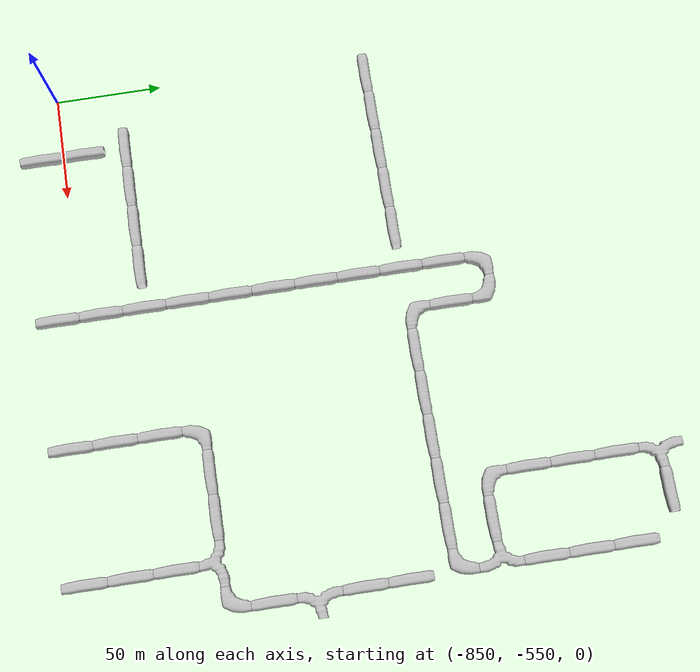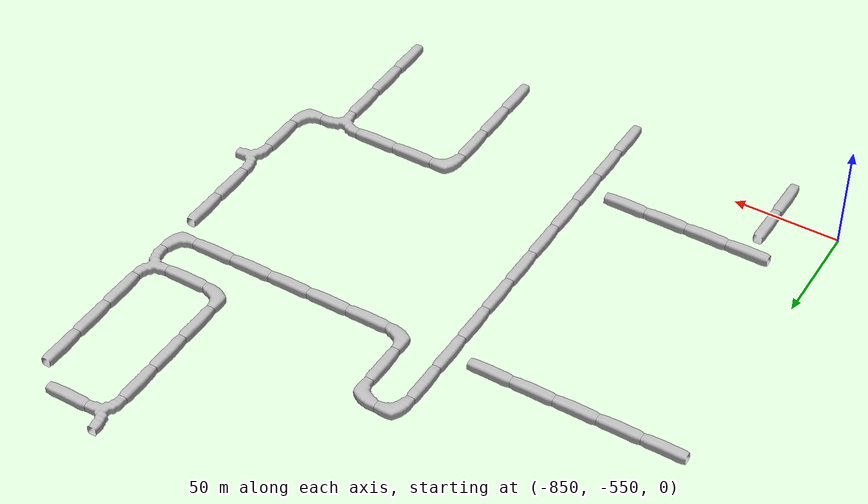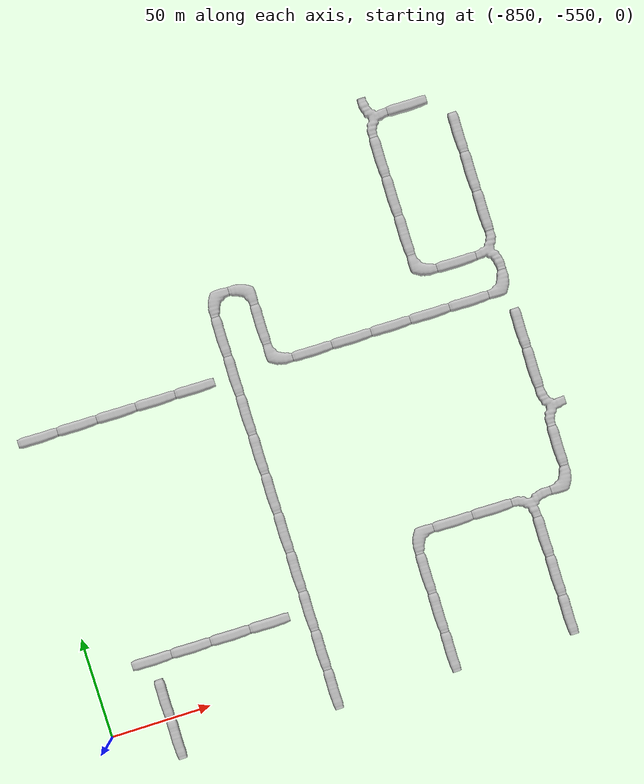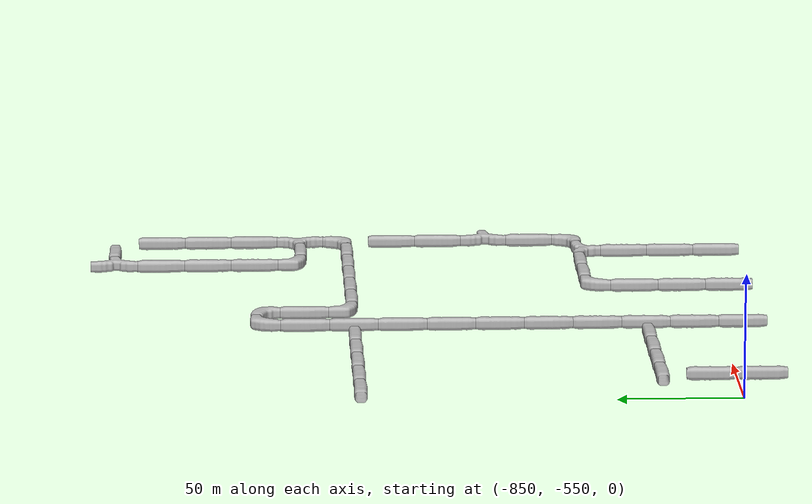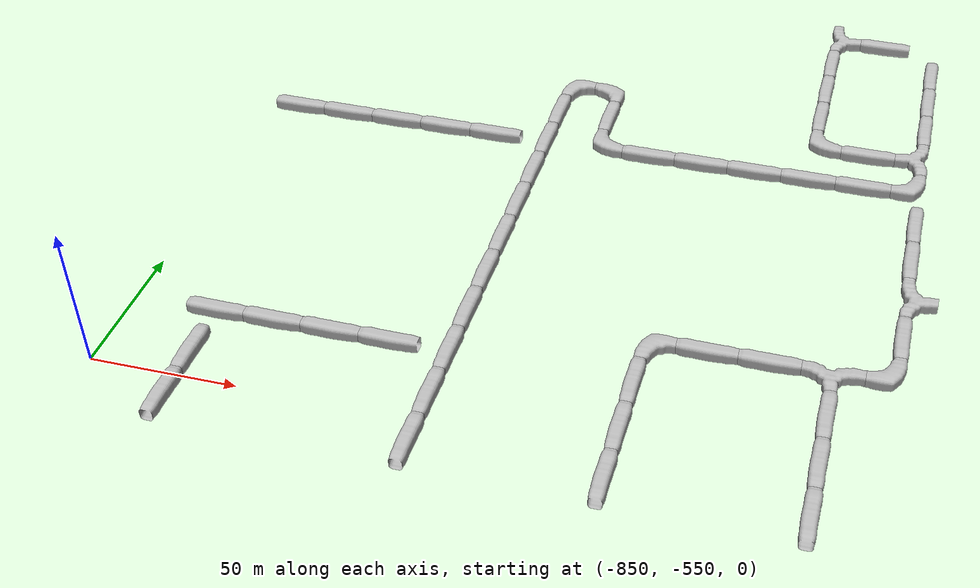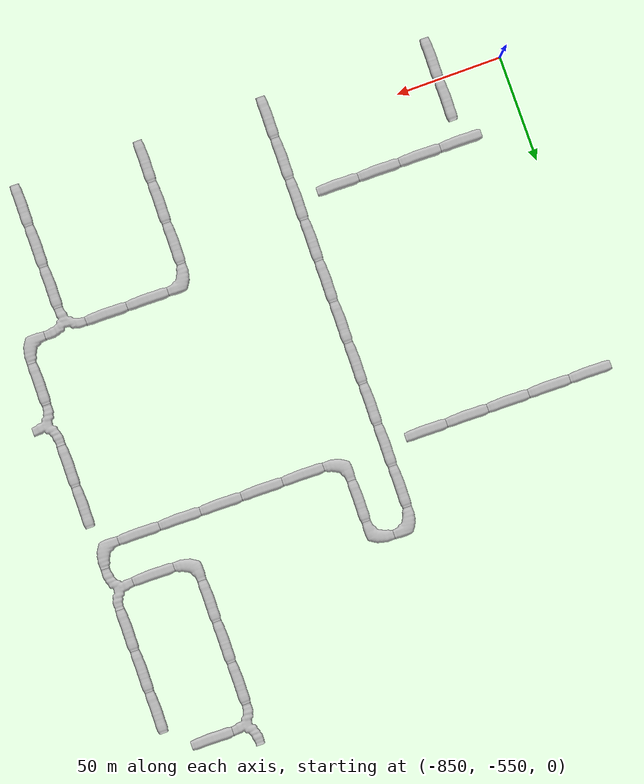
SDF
<sdf version="1.6">
 <world name="cave_32000_16">
  <include>
   <static>true</static>
   <name>cave_-32_-15</name>
   <pose>-640 -300 0 0 0 -1.5707963267948966</pose>
   <uri>model://cave_3way_20m</uri>
  </include>
  <include>
   <static>true</static>
   <name>cave_-31_-15</name>
   <pose>-620 -300 0 0 0 1.5707963267948966</pose>
   <uri>model://cave_straight_20m</uri>
  </include>
  <include>
   <static>true</static>
   <name>cave_-30_-16</name>
   <pose>-600 -320 0 0 0 0.0</pose>
   <uri>model://cave_straight_20m</uri>
  </include>
  <include>
   <static>true</static>
   <name>cave_-30_-17</name>
   <pose>-600 -340 0 0 0 0.0</pose>
   <uri>model://cave_straight_20m</uri>
  </include>
  <include>
   <static>true</static>
   <name>cave_-30_-18</name>
   <pose>-600 -360 0 0 0 0.0</pose>
   <uri>model://cave_straight_20m</uri>
  </include>
  <include>
   <static>true</static>
   <name>cave_-30_-19</name>
   <pose>-600 -380 0 0 0 1.5707963267948966</pose>
   <uri>model://cave_3way_20m</uri>
  </include>
  <include>
   <static>true</static>
   <name>cave_-30_-20</name>
   <pose>-600 -400 0 0 0 1.5707963267948966</pose>
   <uri>model://cave_L_20m</uri>
  </include>
  <include>
   <static>true</static>
   <name>cave_-31_-20</name>
   <pose>-620 -400 0 0 0 1.5707963267948966</pose>
   <uri>model://cave_straight_20m</uri>
  </include>
  <include>
   <static>true</static>
   <name>cave_-32_-20</name>
   <pose>-640 -400 0 0 0 1.5707963267948966</pose>
   <uri>model://cave_straight_20m</uri>
  </include>
  <include>
   <static>true</static>
   <name>cave_-33_-20</name>
   <pose>-660 -400 0 0 0 1.5707963267948966</pose>
   <uri>model://cave_straight_20m</uri>
  </include>
  <include>
   <static>true</static>
   <name>cave_-34_-20</name>
   <pose>-680 -400 0 0 0 1.5707963267948966</pose>
   <uri>model://cave_straight_20m</uri>
  </include>
  <include>
   <static>true</static>
   <name>cave_-35_-20</name>
   <pose>-700 -400 0 0 0 1.5707963267948966</pose>
   <uri>model://cave_straight_20m</uri>
  </include>
  <include>
   <static>true</static>
   <name>cave_-36_-20</name>
   <pose>-720 -400 0 0 0 0.0</pose>
   <uri>model://cave_L_20m</uri>
  </include>
  <include>
   <static>true</static>
   <name>cave_-36_-19</name>
   <pose>-720 -380 0 0 0 0.0</pose>
   <uri>model://cave_straight_20m</uri>
  </include>
  <include>
   <static>true</static>
   <name>cave_-36_-18</name>
   <pose>-720 -360 0 0 0 3.141592653589793</pose>
   <uri>model://cave_L_20m</uri>
  </include>
  <include>
   <static>true</static>
   <name>cave_-37_-18</name>
   <pose>-740 -360 0 0 0 -1.5707963267948966</pose>
   <uri>model://cave_L_20m</uri>
  </include>
  <include>
   <static>true</static>
   <name>cave_-37_-19</name>
   <pose>-740 -380 0 0 0 0.0</pose>
   <uri>model://cave_straight_20m</uri>
  </include>
  <include>
   <static>true</static>
   <name>cave_-37_-20</name>
   <pose>-740 -400 0 0 0 0.0</pose>
   <uri>model://cave_straight_20m</uri>
  </include>
  <include>
   <static>true</static>
   <name>cave_-37_-21</name>
   <pose>-740 -420 0 0 0 0.0</pose>
   <uri>model://cave_straight_20m</uri>
  </include>
  <include>
   <static>true</static>
   <name>cave_-37_-22</name>
   <pose>-740 -440 0 0 0 0.0</pose>
   <uri>model://cave_straight_20m</uri>
  </include>
  <include>
   <static>true</static>
   <name>cave_-37_-23</name>
   <pose>-740 -460 0 0 0 0.0</pose>
   <uri>model://cave_straight_20m</uri>
  </include>
  <include>
   <static>true</static>
   <name>cave_-37_-24</name>
   <pose>-740 -480 0 0 0 0.0</pose>
   <uri>model://cave_straight_20m</uri>
  </include>
  <include>
   <static>true</static>
   <name>cave_-37_-25</name>
   <pose>-740 -500 0 0 0 0.0</pose>
   <uri>model://cave_straight_20m</uri>
  </include>
  <include>
   <static>true</static>
   <name>cave_-37_-26</name>
   <pose>-740 -520 0 0 0 0.0</pose>
   <uri>model://cave_straight_20m</uri>
  </include>
  <include>
   <static>true</static>
   <name>cave_-37_-27</name>
   <pose>-740 -540 0 0 0 0.0</pose>
   <uri>model://cave_straight_20m</uri>
  </include>
  <include>
   <static>true</static>
   <name>cave_-37_-28</name>
   <pose>-740 -560 0 0 0 0.0</pose>
   <uri>model://cave_straight_20m</uri>
  </include>
  <include>
   <static>true</static>
   <name>cave_-34_-28</name>
   <pose>-680 -560 0 0 0 0.0</pose>
   <uri>model://cave_straight_20m</uri>
  </include>
  <include>
   <static>true</static>
   <name>cave_-34_-27</name>
   <pose>-680 -540 0 0 0 0.0</pose>
   <uri>model://cave_straight_20m</uri>
  </include>
  <include>
   <static>true</static>
   <name>cave_-34_-26</name>
   <pose>-680 -520 0 0 0 0.0</pose>
   <uri>model://cave_straight_20m</uri>
  </include>
  <include>
   <static>true</static>
   <name>cave_-34_-25</name>
   <pose>-680 -500 0 0 0 -1.5707963267948966</pose>
   <uri>model://cave_L_20m</uri>
  </include>
  <include>
   <static>true</static>
   <name>cave_-33_-25</name>
   <pose>-660 -500 0 0 0 1.5707963267948966</pose>
   <uri>model://cave_straight_20m</uri>
  </include>
  <include>
   <static>true</static>
   <name>cave_-32_-25</name>
   <pose>-640 -500 0 0 0 1.5707963267948966</pose>
   <uri>model://cave_straight_20m</uri>
  </include>
  <include>
   <static>true</static>
   <name>cave_-31_-25</name>
   <pose>-620 -500 0 0 0 3.141592653589793</pose>
   <uri>model://cave_3way_20m</uri>
  </include>
  <include>
   <static>true</static>
   <name>cave_-30_-25</name>
   <pose>-600 -500 0 0 0 1.5707963267948966</pose>
   <uri>model://cave_L_20m</uri>
  </include>
  <include>
   <static>true</static>
   <name>cave_-30_-24</name>
   <pose>-600 -480 0 0 0 0.0</pose>
   <uri>model://cave_straight_20m</uri>
  </include>
  <include>
   <static>true</static>
   <name>cave_-30_-23</name>
   <pose>-600 -460 0 0 0 -1.5707963267948966</pose>
   <uri>model://cave_3way_20m</uri>
  </include>
  <include>
   <static>true</static>
   <name>cave_-30_-22</name>
   <pose>-600 -440 0 0 0 0.0</pose>
   <uri>model://cave_straight_20m</uri>
  </include>
  <include>
   <static>true</static>
   <name>cave_-30_-21</name>
   <pose>-600 -420 0 0 0 0.0</pose>
   <uri>model://cave_straight_20m</uri>
  </include>
  <include>
   <static>true</static>
   <name>cave_-31_-26</name>
   <pose>-620 -520 0 0 0 0.0</pose>
   <uri>model://cave_straight_20m</uri>
  </include>
  <include>
   <static>true</static>
   <name>cave_-31_-27</name>
   <pose>-620 -540 0 0 0 0.0</pose>
   <uri>model://cave_straight_20m</uri>
  </include>
  <include>
   <static>true</static>
   <name>cave_-31_-28</name>
   <pose>-620 -560 0 0 0 0.0</pose>
   <uri>model://cave_straight_20m</uri>
  </include>
  <include>
   <static>true</static>
   <name>cave_-32_-16</name>
   <pose>-640 -320 0 0 0 0.0</pose>
   <uri>model://cave_straight_20m</uri>
  </include>
  <include>
   <static>true</static>
   <name>cave_-32_-17</name>
   <pose>-640 -340 0 0 0 0.0</pose>
   <uri>model://cave_straight_20m</uri>
  </include>
  <include>
   <static>true</static>
   <name>cave_-32_-18</name>
   <pose>-640 -360 0 0 0 0.0</pose>
   <uri>model://cave_straight_20m</uri>
  </include>
  <include>
   <static>true</static>
   <name>cave_-32_-19</name>
   <pose>-640 -380 0 0 0 0.0</pose>
   <uri>model://cave_L_20m</uri>
  </include>
  <include>
   <static>true</static>
   <name>cave_-31_-19</name>
   <pose>-620 -380 0 0 0 1.5707963267948966</pose>
   <uri>model://cave_straight_20m</uri>
  </include>
  <include>
   <static>true</static>
   <name>cave_-42_-20</name>
   <pose>-840 -400 0 0 0 1.5707963267948966</pose>
   <uri>model://cave_straight_20m</uri>
  </include>
  <include>
   <static>true</static>
   <name>cave_-41_-20</name>
   <pose>-820 -400 0 0 0 1.5707963267948966</pose>
   <uri>model://cave_straight_20m</uri>
  </include>
  <include>
   <static>true</static>
   <name>cave_-40_-20</name>
   <pose>-800 -400 0 0 0 1.5707963267948966</pose>
   <uri>model://cave_straight_20m</uri>
  </include>
  <include>
   <static>true</static>
   <name>cave_-39_-20</name>
   <pose>-780 -400 0 0 0 1.5707963267948966</pose>
   <uri>model://cave_straight_20m</uri>
  </include>
  <include>
   <static>true</static>
   <name>cave_-38_-20</name>
   <pose>-760 -400 0 0 0 1.5707963267948966</pose>
   <uri>model://cave_straight_20m</uri>
  </include>
  <include>
   <static>true</static>
   <name>cave_-41_-26</name>
   <pose>-820 -520 0 0 0 1.5707963267948966</pose>
   <uri>model://cave_straight_20m</uri>
  </include>
  <include>
   <static>true</static>
   <name>cave_-40_-26</name>
   <pose>-800 -520 0 0 0 1.5707963267948966</pose>
   <uri>model://cave_straight_20m</uri>
  </include>
  <include>
   <static>true</static>
   <name>cave_-39_-26</name>
   <pose>-780 -520 0 0 0 1.5707963267948966</pose>
   <uri>model://cave_straight_20m</uri>
  </include>
  <include>
   <static>true</static>
   <name>cave_-38_-26</name>
   <pose>-760 -520 0 0 0 1.5707963267948966</pose>
   <uri>model://cave_straight_20m</uri>
  </include>
  <include>
   <static>true</static>
   <name>cave_-41_-28</name>
   <pose>-820 -560 0 0 0 0.0</pose>
   <uri>model://cave_straight_20m</uri>
  </include>
  <include>
   <static>true</static>
   <name>cave_-41_-27</name>
   <pose>-820 -540 0 0 0 0.0</pose>
   <uri>model://cave_straight_20m</uri>
  </include>
 </world>
</sdf>
